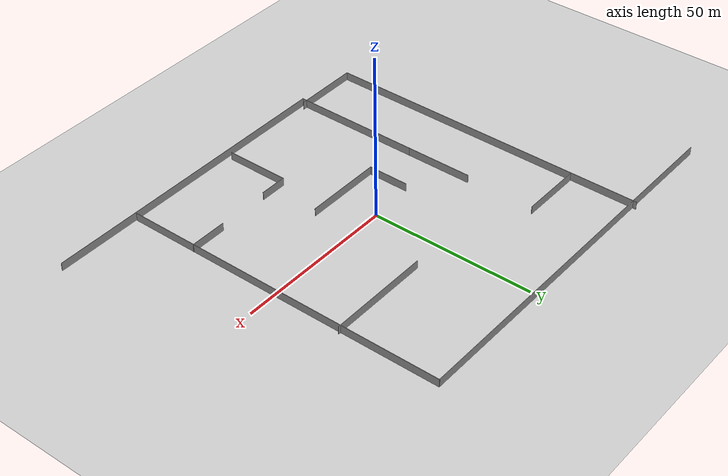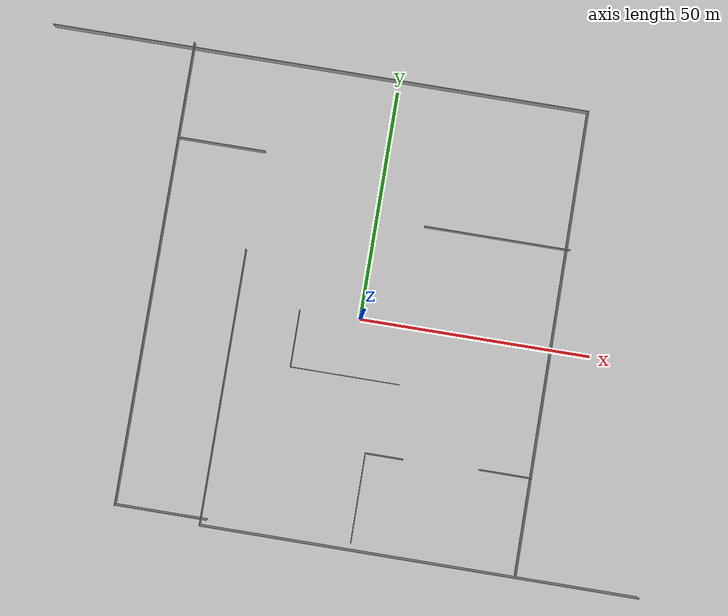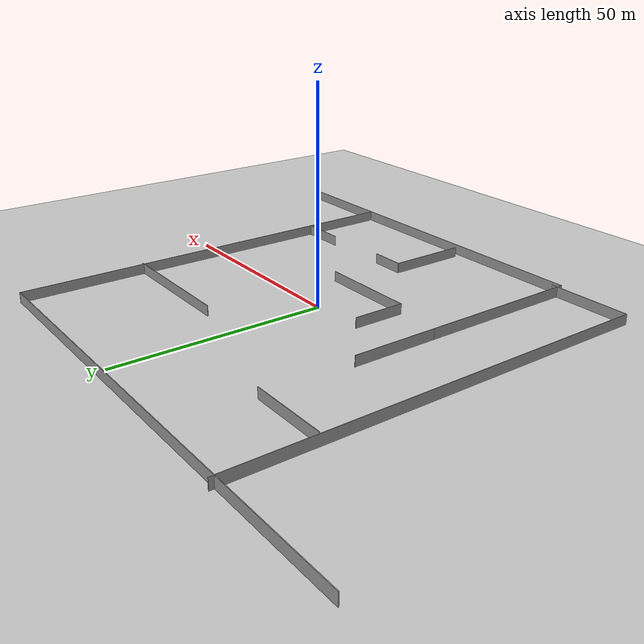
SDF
<sdf version="1.7">
 <world name="default">
  <light name="sun" type="directional">
   <pose>0 0 10 0 -0 0</pose>
   <diffuse>0.8 0.8 0.8 1</diffuse>
   <specular>0.2 0.2 0.2 1</specular>
   <attenuation>
    <range>1000</range>
    <constant>0.9</constant>
    <linear>0.01</linear>
    <quadratic>0.001</quadratic>
   </attenuation>
   <direction>-0.5 0.1 -0.9</direction>
   <spot><inner_angle>0</inner_angle><outer_angle>0</outer_angle><falloff>0</falloff></spot>
  </light>
  <model name="ground_plane">
   <static>1</static>
   <link name="link">
    <collision name="collision">
     <geometry><plane><normal>0 0 1</normal><size>100 100</size></plane></geometry>
     <surface><friction><ode><mu>100</mu><mu2>50</mu2></ode></friction></surface>
    </collision>
    <visual name="visual">
     <cast_shadows>0</cast_shadows>
     <geometry><plane><normal>0 0 1</normal><size>100 100</size></plane></geometry>
     <material>
      <script><uri>file://media/materials/scripts/gazebo.material</uri><name>Gazebo/Grey</name></script>
     </material>
    </visual>
   </link>
  </model>
  <gravity>0 0 -9.8</gravity>
  <magnetic_field>6e-06 2.3e-05 -4.2e-05</magnetic_field>
  <atmosphere type="adiabatic"/>
  <physics type="ode">
   <max_step_size>0.001</max_step_size>
   <real_time_factor>1</real_time_factor>
   <real_time_update_rate>1000</real_time_update_rate>
  </physics>
  <scene><ambient>0.4 0.4 0.4 1</ambient><background>0.7 0.7 0.7 1</background><shadows>1</shadows></scene>
  <audio><device>default</device></audio>
  <spherical_coordinates>
   <surface_model>EARTH_WGS84</surface_model>
   <latitude_deg>0</latitude_deg>
   <longitude_deg>0</longitude_deg>
   <elevation>0</elevation>
   <heading_deg>0</heading_deg>
  </spherical_coordinates>
  <model name="Untitled4">
   <pose>-4.13954 2.12284 0 0 -0 0</pose>
   <link name="Wall_10">
    <collision name="Wall_10_Collision">
     <geometry><box><size>117.5 0.15 2.5</size></box></geometry>
     <pose>0 0 1.25 0 -0 0</pose>
    </collision>
    <visual name="Wall_10_Visual">
     <pose>0 0 1.25 0 -0 0</pose>
     <geometry><box><size>117.5 0.15 2.5</size></box></geometry>
     <material>
      <script><uri>file://media/materials/scripts/gazebo.material</uri><name>Gazebo/Grey</name></script>
      <ambient>1 1 1 1</ambient>
     </material>
     <meta><layer>0</layer></meta>
    </visual>
    <pose>-13.2372 50.1073 0 0 -0 3.14159</pose>
   </link>
   <link name="Wall_13">
    <collision name="Wall_13_Collision">
     <geometry><box><size>101 0.15 2.5</size></box></geometry>
     <pose>0 0 1.25 0 -0 0</pose>
    </collision>
    <visual name="Wall_13_Visual">
     <pose>0 0 1.25 0 -0 0</pose>
     <geometry><box><size>101 0.15 2.5</size></box></geometry>
     <material>
      <script><uri>file://media/materials/scripts/gazebo.material</uri><name>Gazebo/Grey</name></script>
      <ambient>1 1 1 1</ambient>
     </material>
     <meta><layer>0</layer></meta>
    </visual>
    <pose>-41.1975 0.704925 0 0 -0 -1.5708</pose>
   </link>
   <link name="Wall_14">
    <collision name="Wall_14_Collision">
     <geometry><box><size>20 0.15 2.5</size></box></geometry>
     <pose>0 0 1.25 0 -0 0</pose>
    </collision>
    <visual name="Wall_14_Visual">
     <pose>0 0 1.25 0 -0 0</pose>
     <geometry><box><size>20 0.15 2.5</size></box></geometry>
     <material>
      <script><uri>file://media/materials/scripts/gazebo.material</uri><name>Gazebo/Grey</name></script>
      <ambient>1 1 1 1</ambient>
     </material>
     <meta><layer>0</layer></meta>
    </visual>
    <pose>-31.2725 -49.7201 0 0 -0 0</pose>
   </link>
   <link name="Wall_16">
    <collision name="Wall_16_Collision">
     <geometry><box><size>31.75 0.15 2.5</size></box></geometry>
     <pose>0 0 1.25 0 -0 0</pose>
    </collision>
    <visual name="Wall_16_Visual">
     <pose>0 0 1.25 0 -0 0</pose>
     <geometry><box><size>31.75 0.15 2.5</size></box></geometry>
     <material>
      <script><uri>file://media/materials/scripts/gazebo.material</uri><name>Gazebo/Grey</name></script>
      <ambient>1 1 1 1</ambient>
     </material>
     <meta><layer>0</layer></meta>
    </visual>
    <pose>30.3277 19.7845 0 0 -0 0</pose>
   </link>
   <link name="Wall_18">
    <collision name="Wall_18_Collision">
     <geometry><box><size>18.75 0.15 2.5</size></box></geometry>
     <pose>0 0 1.25 0 -0 0</pose>
    </collision>
    <visual name="Wall_18_Visual">
     <pose>0 0 1.25 0 -0 0</pose>
     <geometry><box><size>18.75 0.15 2.5</size></box></geometry>
     <material>
      <script><uri>file://media/materials/scripts/gazebo.material</uri><name>Gazebo/Grey</name></script>
      <ambient>1 1 1 1</ambient>
     </material>
     <meta><layer>0</layer></meta>
    </visual>
    <pose>-31.4621 30.233 0 0 -0 0</pose>
   </link>
   <link name="Wall_2">
    <collision name="Wall_2_Collision">
     <geometry><box><size>12.5 0.15 2.5</size></box></geometry>
     <pose>0 0 1.25 0 -0 0</pose>
    </collision>
    <visual name="Wall_2_Visual">
     <pose>0 0 1.25 0 -0 0</pose>
     <geometry><box><size>12.5 0.15 2.5</size></box></geometry>
     <material>
      <script><uri>file://media/materials/scripts/gazebo.material</uri><name>Gazebo/Grey</name></script>
      <ambient>1 1 1 1</ambient>
     </material>
     <meta><layer>0</layer></meta>
    </visual>
    <pose>-9.13779 -8.55854 0 0 -0 -1.5708</pose>
   </link>
   <link name="Wall_20">
    <collision name="Wall_20_Collision">
     <geometry><box><size>19.25 0.15 2.5</size></box></geometry>
     <pose>0 0 1.25 0 -0 0</pose>
    </collision>
    <visual name="Wall_20_Visual">
     <pose>0 0 1.25 0 -0 0</pose>
     <geometry><box><size>19.25 0.15 2.5</size></box></geometry>
     <material>
      <script><uri>file://media/materials/scripts/gazebo.material</uri><name>Gazebo/Grey</name></script>
      <ambient>1 1 1 1</ambient>
     </material>
     <meta><layer>0</layer></meta>
    </visual>
    <pose>9.73883 -39.8867 0 0 -0 1.5708</pose>
   </link>
   <link name="Wall_21">
    <collision name="Wall_21_Collision">
     <geometry><box><size>8.25 0.15 2.5</size></box></geometry>
     <pose>0 0 1.25 0 -0 0</pose>
    </collision>
    <visual name="Wall_21_Visual">
     <pose>0 0 1.25 0 -0 0</pose>
     <geometry><box><size>8.25 0.15 2.5</size></box></geometry>
     <material>
      <script><uri>file://media/materials/scripts/gazebo.material</uri><name>Gazebo/Grey</name></script>
      <ambient>1 1 1 1</ambient>
     </material>
     <meta><layer>0</layer></meta>
    </visual>
    <pose>13.7888 -30.3367 0 0 -0 0</pose>
   </link>
   <link name="Wall_23">
    <collision name="Wall_23_Collision">
     <geometry><box><size>11.25 0.15 2.5</size></box></geometry>
     <pose>0 0 1.25 0 -0 0</pose>
    </collision>
    <visual name="Wall_23_Visual">
     <pose>0 0 1.25 0 -0 0</pose>
     <geometry><box><size>11.25 0.15 2.5</size></box></geometry>
     <material>
      <script><uri>file://media/materials/scripts/gazebo.material</uri><name>Gazebo/Grey</name></script>
      <ambient>1 1 1 1</ambient>
     </material>
     <meta><layer>0</layer></meta>
    </visual>
    <pose>39.943 -29.8545 0 0 -0 0</pose>
   </link>
   <link name="Wall_3">
    <collision name="Wall_3_Collision">
     <geometry><box><size>23.75 0.15 2.5</size></box></geometry>
     <pose>0 0 1.25 0 -0 0</pose>
    </collision>
    <visual name="Wall_3_Visual">
     <pose>0 0 1.25 0 -0 0</pose>
     <geometry><box><size>23.75 0.15 2.5</size></box></geometry>
     <material>
      <script><uri>file://media/materials/scripts/gazebo.material</uri><name>Gazebo/Grey</name></script>
      <ambient>1 1 1 1</ambient>
     </material>
     <meta><layer>0</layer></meta>
    </visual>
    <pose>2.66221 -14.7335 0 0 -0 0</pose>
   </link>
   <link name="Wall_5">
    <collision name="Wall_5_Collision">
     <geometry><box><size>20.5 0.15 2.5</size></box></geometry>
     <pose>0 0 1.25 0 -0 0</pose>
    </collision>
    <visual name="Wall_5_Visual">
     <pose>0 0 1.25 0 -0 0</pose>
     <geometry><box><size>20.5 0.15 2.5</size></box></geometry>
     <material>
      <script><uri>file://media/materials/scripts/gazebo.material</uri><name>Gazebo/Grey</name></script>
      <ambient>1 1 1 1</ambient>
     </material>
     <meta><layer>0</layer></meta>
    </visual>
    <pose>-22.6878 -1.60493 0 0 -0 -1.5708</pose>
   </link>
   <link name="Wall_6">
    <collision name="Wall_6_Collision">
     <geometry><box><size>39.5 0.15 2.5</size></box></geometry>
     <pose>0 0 1.25 0 -0 0</pose>
    </collision>
    <visual name="Wall_6_Visual">
     <pose>0 0 1.25 0 -0 0</pose>
     <geometry><box><size>39.5 0.15 2.5</size></box></geometry>
     <material>
      <script><uri>file://media/materials/scripts/gazebo.material</uri><name>Gazebo/Grey</name></script>
      <ambient>1 1 1 1</ambient>
     </material>
     <meta><layer>0</layer></meta>
    </visual>
    <pose>-22.6878 -31.4549 0 0 -0 -1.5708</pose>
   </link>
   <link name="Wall_7">
    <collision name="Wall_7_Collision">
     <geometry><box><size>94.75 0.15 2.5</size></box></geometry>
     <pose>0 0 1.25 0 -0 0</pose>
    </collision>
    <visual name="Wall_7_Visual">
     <pose>0 0 1.25 0 -0 0</pose>
     <geometry><box><size>94.75 0.15 2.5</size></box></geometry>
     <material>
      <script><uri>file://media/materials/scripts/gazebo.material</uri><name>Gazebo/Grey</name></script>
      <ambient>1 1 1 1</ambient>
     </material>
     <meta><layer>0</layer></meta>
    </visual>
    <pose>24.6122 -51.1299 0 0 -0 0</pose>
   </link>
   <link name="Wall_9">
    <collision name="Wall_9_Collision">
     <geometry><box><size>101 0.15 2.5</size></box></geometry>
     <pose>0 0 1.25 0 -0 0</pose>
    </collision>
    <visual name="Wall_9_Visual">
     <pose>0 0 1.25 0 -0 0</pose>
     <geometry><box><size>101 0.15 2.5</size></box></geometry>
     <material>
      <script><uri>file://media/materials/scripts/gazebo.material</uri><name>Gazebo/Grey</name></script>
      <ambient>1 1 1 1</ambient>
     </material>
     <meta><layer>0</layer></meta>
    </visual>
    <pose>45.4378 -0.317712 0 0 -0 1.5708</pose>
   </link>
   <static>1</static>
  </model>
 </world>
</sdf>
